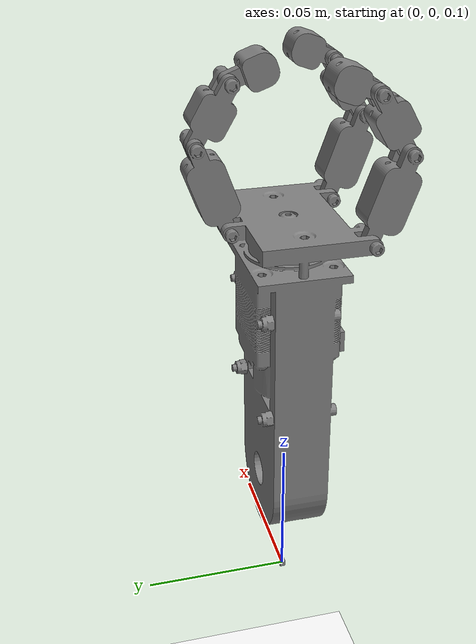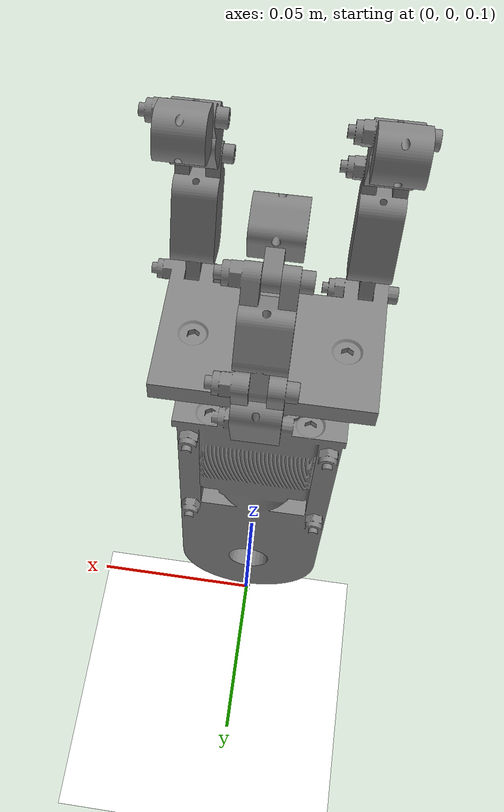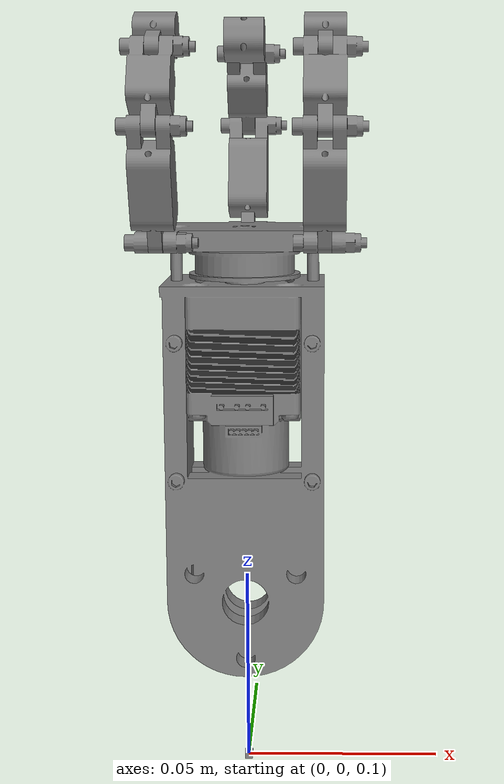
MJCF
<mujoco model="arm2d2_gripper">
  <visual>
    <headlight ambient="0 0 0" diffuse="0.3 0.3 0.3" specular="1 1 1"/>
    <quality shadowsize="8192"/>
  </visual>
  <compiler angle="radian" meshdir="../meshes/" autolimits="true"/>
  <option integrator="RK4" timestep="0.0001" gravity="0 0 0">
  </option>
  <size njmax="500" nconmax="100"/>

  <asset>
    <include file="gripper_assets.xml"/>
  </asset>

  <worldbody>
    <light pos=".4 .4 .5" dir="-2 -2 -1.5" diffuse="1 1 1"/>
    <geom type="plane" size="5 5 0.1" rgba="1 1 1 1"/>

    <body name="base" pos="0 0 0.1" euler="1.57 0 0">
      <geom type="box" size="0.001 0.001 0.001"/>
      <joint type="free"/>
      <include file="gripper_body.xml"/>
    </body>
  </worldbody>

  <include file="gripper_actuator.xml"/>

</mujoco>

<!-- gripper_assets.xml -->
<mujoco model="arm2d2_v3">
    <mesh name="gripper" file="gripper.stl" scale="0.01 0.01 0.01"/>
    <mesh name="finger_2b" file="finger_2b.stl" scale="0.01 0.01 0.01"/>
    <mesh name="finger_2c" file="finger_2c.stl" scale="0.01 0.01 0.01"/>
    <mesh name="finger_1a" file="finger_1a.stl" scale="0.01 0.01 0.01"/>
    <mesh name="finger_1b" file="finger_1b.stl" scale="0.01 0.01 0.01"/>
    <mesh name="finger_1c" file="finger_1c.stl" scale="0.01 0.01 0.01"/>
    <mesh name="finger_3a" file="finger_3a.stl" scale="0.01 0.01 0.01"/>
    <mesh name="finger_3b" file="finger_3b.stl" scale="0.01 0.01 0.01"/>
    <mesh name="finger_3c" file="finger_3c.stl" scale="0.01 0.01 0.01"/>
    <mesh name="finger_2a" file="finger_2a.stl" scale="0.01 0.01 0.01"/>
</mujoco>

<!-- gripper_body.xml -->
<mujoco model="arm2d2_v3">
    <body name="gripper" pos="0 0.025 0" euler="-1.57 0 0">
        <inertial pos="0.000565176 0.0606526 0.0113399" quat="0.419041 0.436542 -0.586477 0.538405" mass="0.0992864" diaginertia="0.000174911 0.000171846 2.92432e-05"/>
        <joint name="joint_6" pos="0 0 0" axis="0 0 -1" range="-1.91986 1.91986"/>
        <geom pos="0 0 0" type="mesh" contype="0" conaffinity="0" group="1" density="0" mesh="gripper"/>
        <geom pos="0 0 0" type="mesh" mesh="gripper"/>
        <body name="finger_1a" pos="0.02165 -0.019744 0.11291">
        <inertial pos="-0.00157739 -0.00535918 0.0147248" mass="0.00261935" diaginertia="3.33334e-06 3.33334e-06 3.33334e-06"/>
        <joint name="F1J1" pos="0 0 0" axis="1 0 0" stiffness="0.001"/>
        <geom pos="-0.02165 0.019744 -0.11291" type="mesh" contype="0" conaffinity="0" group="1" density="0" mesh="finger_1a"/>
        <geom pos="-0.02165 0.019744 -0.11291" type="mesh" mesh="finger_1a"/>
        <body name="finger_1b" pos="5e-05 -0.009918 0.027251">
            <inertial pos="-0.00150154 0.0059248 0.0102624" mass="0.00161827" diaginertia="3.33333e-06 3.33333e-06 3.33333e-06"/>
            <joint name="F1J2" pos="0 0 0" axis="-1 0 0" stiffness="0.025" springref="0"/>
            <geom pos="-0.0217 0.029662 -0.140161" type="mesh" contype="0" conaffinity="0" group="1" density="0" mesh="finger_1b"/>
            <geom pos="-0.0217 0.029662 -0.140161" type="mesh" mesh="finger_1b"/>
            <body name="finger_1c" pos="5e-05 0.0105 0.018186">
            <inertial pos="-0.00170001 0.00811429 0.00295382" mass="0.000960393" diaginertia="3.33333e-06 3.33333e-06 3.33333e-06"/>
            <joint name="F1J3" pos="0 0 0" axis="-1 0 0" stiffness="0.025" springref="0"/>
            <geom pos="-0.02175 0.019162 -0.158347" type="mesh" contype="0" conaffinity="0" group="1" density="0" mesh="finger_1c"/>
            <geom pos="-0.02175 0.019162 -0.158347" type="mesh" mesh="finger_1c"/>
            </body>
        </body>
        </body>
        <body name="finger_3a" pos="-0.02185 -0.019744 0.11291">
        <inertial pos="0.00182261 -0.00535918 0.0147248" mass="0.00261935" diaginertia="3.33333e-06 3.33333e-06 3.33333e-06"/>
        <joint name="F3J1" pos="0 0 0" axis="-1 0 0" stiffness="0.001"/>
        <geom pos="0.02185 0.019744 -0.11291" type="mesh" contype="0" conaffinity="0" group="1" density="0" mesh="finger_3a"/>
        <geom pos="0.02185 0.019744 -0.11291" type="mesh" mesh="finger_3a"/>
        <body name="finger_3b" pos="-5e-05 -0.009918 0.027251">
            <inertial pos="0.00189846 0.0059248 0.0102624" mass="0.00161827" diaginertia="3.33333e-06 3.33333e-06 3.33333e-06"/>
            <joint name="F3J2" pos="0 0 0" axis="1 0 0" stiffness="0.025" springref="0"/>
            <geom pos="0.0219 0.029662 -0.140161" type="mesh" contype="0" conaffinity="0" group="1" density="0" mesh="finger_3b"/>
            <geom pos="0.0219 0.029662 -0.140161" type="mesh" mesh="finger_3b"/>
            <body name="finger_3c" pos="-5e-05 0.0105 0.018186">
            <inertial pos="0.00169999 0.00811429 0.00295382" mass="0.000960393" diaginertia="3.33333e-06 3.33333e-06 3.33333e-06"/>
            <joint name="F3J3" pos="0 0 0" axis="1 0 0" stiffness="0.025" springref="0"/>
            <geom pos="0.02195 0.019162 -0.158347" type="mesh" contype="0" conaffinity="0" group="1" density="0" mesh="finger_3c"/>
            <geom pos="0.02195 0.019162 -0.158347" type="mesh" mesh="finger_3c"/>
            </body>
        </body>
        </body>
        <body name="finger_2a" pos="-0.00185 0.019256 0.11291">
        <inertial pos="0.00182261 0.00535983 0.0147248" mass="0.00261931" diaginertia="3.33333e-06 3.33333e-06 3.33333e-06"/>
        <joint name="F2J1" pos="0 0 0" axis="-1 0 0" stiffness="0.001"/>
        <geom pos="0.00185 -0.019256 -0.11291" type="mesh" contype="0" conaffinity="0" group="1" density="0" mesh="finger_2a"/>
        <geom pos="0.00185 -0.019256 -0.11291" type="mesh" mesh="finger_2a"/>
        <body name="finger_2b" pos="-5e-05 0.009919 0.027251">
            <inertial pos="0.00189846 -0.00592523 0.0102624" mass="0.00161828" diaginertia="3.33333e-06 3.33333e-06 3.33333e-06"/>
            <joint name="F2J2" pos="0 0 0" axis="1 0 0" stiffness="0.025" springref="0"/>
            <geom pos="0.0019 -0.029175 -0.140161" type="mesh" contype="0" conaffinity="0" group="1" density="0" mesh="finger_2b"/>
            <geom pos="0.0019 -0.029175 -0.140161" type="mesh" mesh="finger_2b"/>
            <body name="finger_2c" pos="-5e-05 -0.0105 0.018186">
            <inertial pos="0.00169999 -0.0081147 0.00295382" mass="0.000960393" diaginertia="3.33333e-06 3.33333e-06 3.33333e-06"/>
            <joint name="F2J3" pos="0 0 0" axis="1 0 0" stiffness="0.25" springref="0"/>
            <geom pos="0.00195 -0.018675 -0.158347" type="mesh" contype="0" conaffinity="0" group="1" density="0" mesh="finger_2c"/>
            <geom pos="0.00195 -0.018675 -0.158347" type="mesh" mesh="finger_2c"/>
            </body>
        </body>
        </body>
    </body>
</mujoco>

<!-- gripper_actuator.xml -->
<mujoco>
  <actuator>

  <velocity name="GJ1" joint="F1J1" kv="1" gear="0.01 0 0 0 0 0"/>
  <velocity name="GJ2" joint="F2J1" kv="1"  gear="0.01 0 0 0 0 0"/>
  <velocity name="GJ3" joint="F3J1" kv="1" gear="0.01 0 0 0 0 0"/>

  </actuator>
</mujoco>

<sensor>
  <jointpos name="F1J1_encoder" joint="F1J1" noise="0.001"/>
  <jointpos name="F1J2_encoder" joint="F1J2" noise="0.001"/>
  <jointpos name="F1J3_encoder" joint="F1J3" noise="0.001"/>
  <jointpos name="F2J1_encoder" joint="F2J1" noise="0.001"/>
  <jointpos name="F2J2_encoder" joint="F2J2" noise="0.001"/>
  <jointpos name="F2J3_encoder" joint="F2J3" noise="0.001"/>
  <jointpos name="F3J1_encoder" joint="F3J1" noise="0.001"/>
  <jointpos name="F3J2_encoder" joint="F3J2" noise="0.001"/>
  <jointpos name="F3J3_encoder" joint="F3J3" noise="0.001"/>
</sensor>
